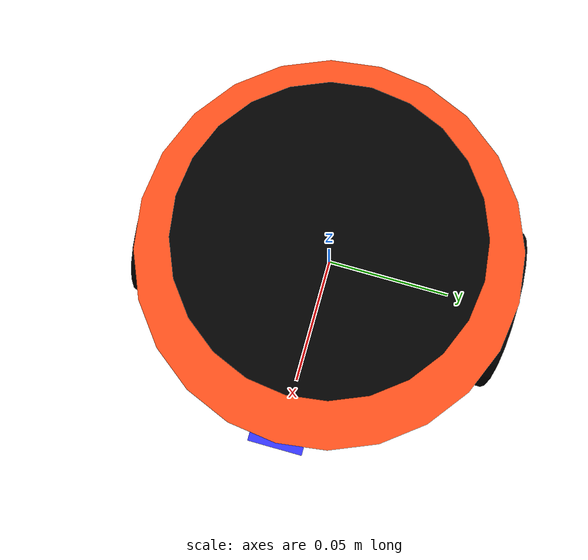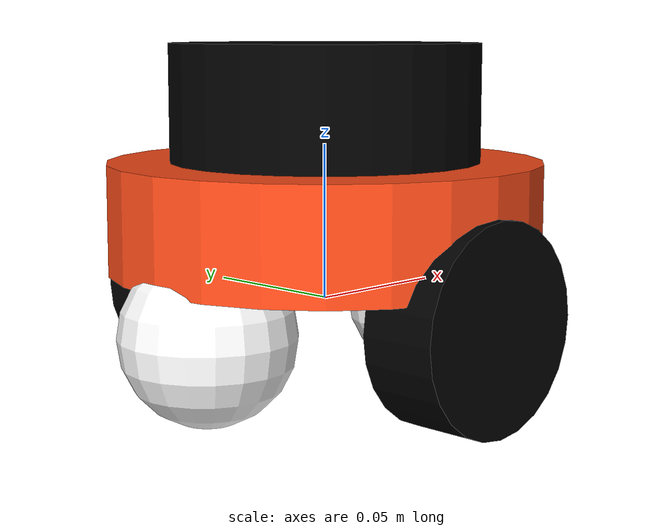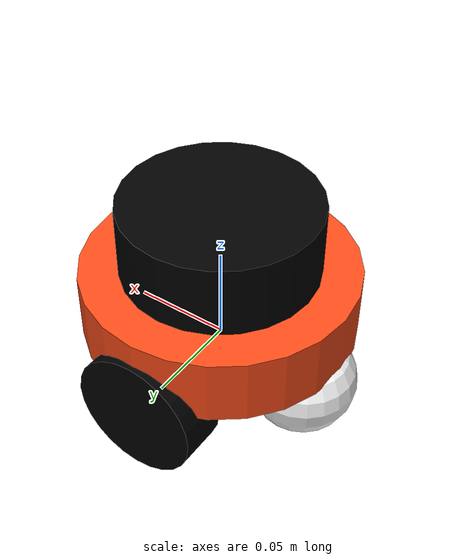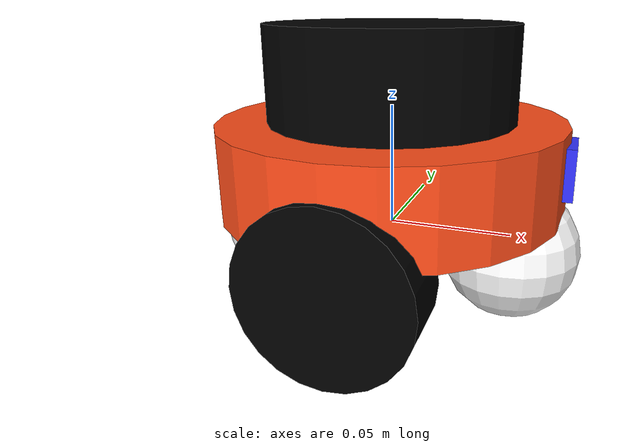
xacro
<?xml version="1.0"?>
<robot xmlns:xacro="http://www.ros.org/wiki/xacro"  name="robot">

    <xacro:arg name="use_ros2_control" default="true"/>

    <xacro:include filename="robot_core.xacro" />

    <xacro:if value="$(arg use_ros2_control)">
        <xacro:include filename="ros2_control.xacro"/>
    </xacro:if>
    <xacro:unless value="$(arg use_ros2_control)">
        <xacro:include filename="gazebo_control.xacro"/>
    </xacro:unless>
    <xacro:include filename="lidar.xacro"/>
    <xacro:include filename="camera.xacro"/>

</robot>

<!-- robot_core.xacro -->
<robot xmlns:xacro="http://www.ros.org/wiki/xacro" >

    <xacro:include filename="inertial_macros.xacro"/>
    <material name="white">
        <color rgba="1 1 1 1" />
    </material>

    <material name="orange">
        <color rgba="1 0.3 0.1 1" />
    </material>

    <material name="blue">
        <color rgba="0.2 0.2 1 1" />
    </material>

    <material name="black">
        <color rgba="0 0 0 1" />
    </material>

    <!-- BASE LINK-->

    <link name="base_link">

    </link>

        <!-- CHASSIS LINK-->

    <joint name="chassis_joint" type="fixed">
        <parent link="base_link"/>
        <child link="chassis"/>
        <origin xyz="0 0 0.01"/>
    </joint>

    <link name="chassis">
        <visual>
            <origin xyz="0 0 0.0175"/>
            <geometry>
                <cylinder length="0.035" radius="0.07"/>
            </geometry>
            <material name="orange"/>
        </visual>
        <collision>
            <origin xyz="0 0 0.0175"/>
            <geometry>
                <cylinder length="0.035" radius="0.07"/>
            </geometry>
        </collision>
        <xacro:inertial_cylinder mass="0.5" length="0.035" radius="0.07">
            <origin xyz="0 0 0.0175" rpy="0 0 0"/>
        </xacro:inertial_cylinder>
    </link>

    <gazebo reference="chassis">
        <material>Gazebo/Orange</material>
    </gazebo>

    <!-- LEFT WHEEL LINK-->

    <joint name= "left_wheel_joint" type="continuous">
        <parent link="base_link"/>
        <child link="left_wheel"/>
        <origin xyz="0 0.06 0" rpy="-${pi/2} 0 0"/>
        <axis xyz="0 0 1"/>
    </joint>

    <link name="left_wheel">
        <visual>
            <geometry>
                <cylinder radius="0.0325" length="0.025"/>
            </geometry>
            <material name="black"/>
        </visual>
        <collision>
            <geometry>
                <sphere radius="0.0325"/>
            </geometry>
        </collision>
        <xacro:inertial_cylinder mass="0.1" length="0.025" radius="0.0325">
            <origin xyz="0 0 0" rpy="0 0 0"/>
        </xacro:inertial_cylinder>
    </link>

    <gazebo reference="left_wheel">
        <material>Gazebo/Black</material>
    </gazebo>

    <!-- RIGHT WHEEL LINK-->

    <joint name= "right_wheel_joint" type="continuous">
        <parent link="base_link"/>
        <child link="right_wheel"/>
        <origin xyz="0 -0.06 0" rpy="${pi/2} 0 0"/>
        <axis xyz="0 0 -1"/>
    </joint>

    <link name="right_wheel">
        <visual>
            <geometry>
                <cylinder radius="0.0325" length="0.025"/>
            </geometry>
            <material name="black"/>
        </visual>
        <collision>
            <geometry>
                <sphere radius="0.0325"/>
            </geometry>
        </collision>
        <xacro:inertial_cylinder mass="0.1" length="0.025" radius="0.0325">
            <origin xyz="0 0 0" rpy="0 0 0"/>
        </xacro:inertial_cylinder>
    </link>

    <gazebo reference="right_wheel">
        <material>Gazebo/Black</material>
    </gazebo>

    <!-- CASTER FRONT WHEEL-->

    <joint name="caster_wheel_front_joint" type="fixed">
        <parent link="chassis"/>
        <child link="caster_wheel_front"/>
        <origin xyz="0.05 0 -0.015"/>
    </joint>

    <link name="caster_wheel_front">
        <visual>
            <geometry>
                <sphere radius="0.0275"/>
            </geometry>
            <material name="white"/>
        </visual>
        <collision>
            <geometry>
                <sphere radius="0.0275"/>
            </geometry>
        </collision>
        <xacro:inertial_sphere mass="0.1" radius="0.0275">
            <origin xyz="0 0 0" rpy="0 0 0"/>
        </xacro:inertial_sphere>
    </link>

    <gazebo reference="caster_wheel_front">
        <material>Gazebo/White</material>
        <mu1 value="0.001"/>
        <mu2 value="0.001"/>
    </gazebo>

    <!-- CASTER BACK WHEEL-->

    <joint name="caster_wheel_back_joint" type="fixed">
        <parent link="chassis"/>
        <child link="caster_wheel_back"/>
        <origin xyz="-0.05 0 -0.015"/>
    </joint>

    <link name="caster_wheel_back">
        <visual>
            <geometry>
                <sphere radius="0.0275"/>
            </geometry>
            <material name="white"/>
        </visual>
        <collision>
            <geometry>
                <sphere radius="0.0275"/>
            </geometry>
        </collision>
        <xacro:inertial_sphere mass="0.1" radius="0.0275">
            <origin xyz="0 0 0" rpy="0 0 0"/>
        </xacro:inertial_sphere>
    </link>

    <gazebo reference="caster_wheel_back">
        <material>Gazebo/White</material>
        <mu1 value="0.001"/>
        <mu2 value="0.001"/>
    </gazebo>

</robot>

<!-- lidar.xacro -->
<robot xmlns:xacro="http://www.ros.org/wiki/xacro" >

    <joint name="laser_joint" type="fixed">
        <parent link="chassis"/>
        <child link="laser_frame"/>
        <origin xyz="0 0 0.0525" rpy="0 0 0"/>
    </joint>

    <link name="laser_frame">
        <visual>
            <geometry>
                <cylinder radius="0.05" length="0.04"/>
            </geometry>
            <material name="black"/>
        </visual>
        <collision>
            <geometry>
                <cylinder radius="0.05" length="0.04"/>
            </geometry>
        </collision>
        <xacro:inertial_cylinder mass="0.1" length="0.04" radius="0.05">
            <origin xyz="0 0 0" rpy="0 0 0"/>
        </xacro:inertial_cylinder>
    </link>

    <gazebo reference="laser_frame">
        <material>Gazebo/Black</material>
        <sensor name="laser" type="ray">
            <pose> 0 0 0 0 0 0 </pose>
            <visualize>false</visualize>
            <update_rate>10</update_rate>
            <ray>
                <scan>
                    <horizontal>
                        <samples>360</samples>
                        <resolution>1</resolution>
                        <min_angle>-3.14</min_angle>
                        <max_angle>3.14</max_angle>
                    </horizontal>
                </scan>
                <range>
                    <min>0.3</min>
                    <max>12</max>
                    <resolution>0.01</resolution>
                </range>
            </ray>
            <plugin name="laser_controller" filename="libgazebo_ros_ray_sensor.so">
                <ros>
                    <argument>~/out:=scan</argument>
                </ros>
                <output_type>sensor_msgs/LaserScan</output_type>
                <frame_name>laser_frame</frame_name>
            </plugin>
        </sensor>
    </gazebo>

</robot>

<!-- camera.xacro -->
<robot xmlns:xacro="http://www.ros.org/wiki/xacro" >

    <joint name="camera_joint" type="fixed">
        <parent link="chassis"/>
        <child link="camera_link"/>
        <origin xyz="0.07 0 0.02" rpy="0 0 0"/>
    </joint>

    <link name="camera_link">
        <visual>
            <geometry>
                <box size="0.005 0.02 0.02"/>
            </geometry>
            <material name="blue"/>
        </visual>
    </link>

    <joint name="camera_optical_joint" type="fixed">
        <parent link="camera_link"/>
        <child link="camera_link_optical"/>
        <origin xyz="0 0 0" rpy="${-pi/2} 0 ${-pi/2}"/>
    </joint>

    <link name="camera_link_optical"></link>

    <gazebo reference="camera_link">
        <material>Gazebo/Blue</material>

        <sensor name="camera" type="camera">
            <pose> 0 0 0 0 0 0 </pose>
            <visualize>true</visualize>
            <update_rate>10</update_rate>
            <camera>
                <horizontal_fov>1.089</horizontal_fov>
                <image>
                    <format>R8G8B8</format>
                    <width>640</width>
                    <height>480</height>
                </image>
                <clip>
                    <near>0.05</near>
                    <far>8.0</far>
                </clip>
            </camera>
            <plugin name="camera_controller" filename="libgazebo_ros_camera.so">
                <frame_name>camera_link_optical</frame_name>
            </plugin>
        </sensor>
    </gazebo>

</robot>
